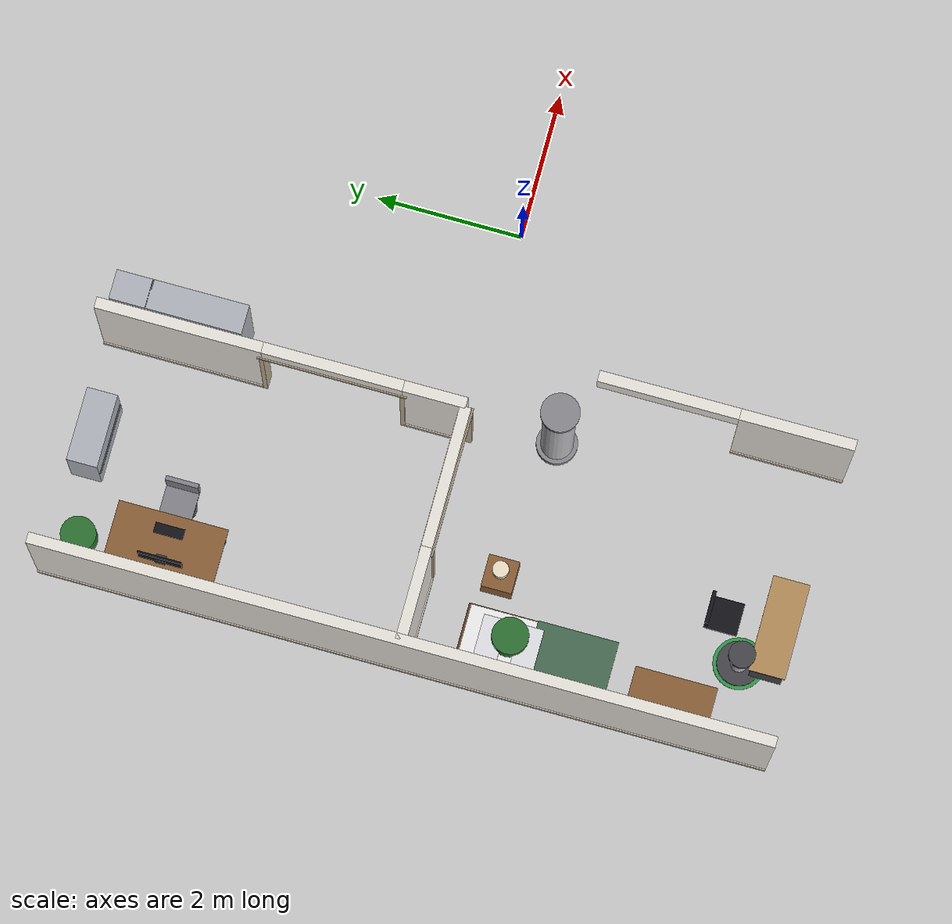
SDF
<sdf version="1.4">
 <world name="complex_indoor">
  <include><uri>model://sun</uri></include>
  <include><uri>model://ground_plane</uri></include>
  <model name="wall_west_0">
   <static>true</static>
   <pose>-6.000 0.000 1.250 0 0 0.0000</pose>
   <link name="link">
    <collision name="collision"><geometry><box><size>0.150 10.000 2.500</size></box></geometry></collision>
    <visual name="visual">
     <geometry><box><size>0.150 10.000 2.500</size></box></geometry>
     <material>
      <ambient>0.93 0.91 0.88 1</ambient>
      <diffuse>0.93 0.91 0.88 1</diffuse>
      <specular>0.1 0.1 0.1 1</specular>
     </material>
    </visual>
   </link>
  </model>
  <model name="wall_west_base_0">
   <static>true</static>
   <pose>-6.000 0.000 0.050 0 0 0.0000</pose>
   <link name="link">
    <collision name="collision"><geometry><box><size>0.190 10.000 0.100</size></box></geometry></collision>
    <visual name="visual">
     <geometry><box><size>0.190 10.000 0.100</size></box></geometry>
     <material>
      <ambient>0.82 0.78 0.72 1</ambient>
      <diffuse>0.82 0.78 0.72 1</diffuse>
      <specular>0.1 0.1 0.1 1</specular>
     </material>
    </visual>
   </link>
  </model>
  <model name="wall_split_0">
   <static>true</static>
   <pose>-5.375 0.000 1.250 0 0 0.0000</pose>
   <link name="link">
    <collision name="collision"><geometry><box><size>1.250 0.150 2.500</size></box></geometry></collision>
    <visual name="visual">
     <geometry><box><size>1.250 0.150 2.500</size></box></geometry>
     <material>
      <ambient>0.93 0.91 0.88 1</ambient>
      <diffuse>0.93 0.91 0.88 1</diffuse>
      <specular>0.1 0.1 0.1 1</specular>
     </material>
    </visual>
   </link>
  </model>
  <model name="wall_split_base_0">
   <static>true</static>
   <pose>-5.375 0.000 0.050 0 0 0.0000</pose>
   <link name="link">
    <collision name="collision"><geometry><box><size>1.250 0.190 0.100</size></box></geometry></collision>
    <visual name="visual">
     <geometry><box><size>1.250 0.190 0.100</size></box></geometry>
     <material>
      <ambient>0.82 0.78 0.72 1</ambient>
      <diffuse>0.82 0.78 0.72 1</diffuse>
      <specular>0.1 0.1 0.1 1</specular>
     </material>
    </visual>
   </link>
  </model>
  <model name="wall_split_lintel_1">
   <static>true</static>
   <pose>-3.800 0.000 2.300 0 0 0.0000</pose>
   <link name="link">
    <collision name="collision"><geometry><box><size>1.900 0.150 0.400</size></box></geometry></collision>
    <visual name="visual">
     <geometry><box><size>1.900 0.150 0.400</size></box></geometry>
     <material>
      <ambient>0.93 0.91 0.88 1</ambient>
      <diffuse>0.93 0.91 0.88 1</diffuse>
      <specular>0.1 0.1 0.1 1</specular>
     </material>
    </visual>
   </link>
  </model>
  <model name="wall_split_frame_1_l">
   <static>true</static>
   <pose>-4.750 0.000 1.050 0 0 0.0000</pose>
   <link name="link">
    <collision name="collision"><geometry><box><size>0.060 0.190 2.100</size></box></geometry></collision>
    <visual name="visual">
     <geometry><box><size>0.060 0.190 2.100</size></box></geometry>
     <material>
      <ambient>0.75 0.68 0.58 1</ambient>
      <diffuse>0.75 0.68 0.58 1</diffuse>
      <specular>0.1 0.1 0.1 1</specular>
     </material>
    </visual>
   </link>
  </model>
  <model name="wall_split_frame_1_r">
   <static>true</static>
   <pose>-2.850 0.000 1.050 0 0 0.0000</pose>
   <link name="link">
    <collision name="collision"><geometry><box><size>0.060 0.190 2.100</size></box></geometry></collision>
    <visual name="visual">
     <geometry><box><size>0.060 0.190 2.100</size></box></geometry>
     <material>
      <ambient>0.75 0.68 0.58 1</ambient>
      <diffuse>0.75 0.68 0.58 1</diffuse>
      <specular>0.1 0.1 0.1 1</specular>
     </material>
    </visual>
   </link>
  </model>
  <model name="wall_split_frame_1_t">
   <static>true</static>
   <pose>-3.800 0.000 2.130 0 0 0.0000</pose>
   <link name="link">
    <collision name="collision"><geometry><box><size>2.020 0.190 0.060</size></box></geometry></collision>
    <visual name="visual">
     <geometry><box><size>2.020 0.190 0.060</size></box></geometry>
     <material>
      <ambient>0.75 0.68 0.58 1</ambient>
      <diffuse>0.75 0.68 0.58 1</diffuse>
      <specular>0.1 0.1 0.1 1</specular>
     </material>
    </visual>
   </link>
  </model>
  <model name="wall_north_div1_0">
   <static>true</static>
   <pose>-2.800 0.425 1.250 0 0 0.0000</pose>
   <link name="link">
    <collision name="collision"><geometry><box><size>0.150 0.850 2.500</size></box></geometry></collision>
    <visual name="visual">
     <geometry><box><size>0.150 0.850 2.500</size></box></geometry>
     <material>
      <ambient>0.93 0.91 0.88 1</ambient>
      <diffuse>0.93 0.91 0.88 1</diffuse>
      <specular>0.1 0.1 0.1 1</specular>
     </material>
    </visual>
   </link>
  </model>
  <model name="wall_north_div1_base_0">
   <static>true</static>
   <pose>-2.800 0.425 0.050 0 0 0.0000</pose>
   <link name="link">
    <collision name="collision"><geometry><box><size>0.190 0.850 0.100</size></box></geometry></collision>
    <visual name="visual">
     <geometry><box><size>0.190 0.850 0.100</size></box></geometry>
     <material>
      <ambient>0.82 0.78 0.72 1</ambient>
      <diffuse>0.82 0.78 0.72 1</diffuse>
      <specular>0.1 0.1 0.1 1</specular>
     </material>
    </visual>
   </link>
  </model>
  <model name="wall_north_div1_lintel_1">
   <static>true</static>
   <pose>-2.800 1.800 2.300 0 0 0.0000</pose>
   <link name="link">
    <collision name="collision"><geometry><box><size>0.150 1.900 0.400</size></box></geometry></collision>
    <visual name="visual">
     <geometry><box><size>0.150 1.900 0.400</size></box></geometry>
     <material>
      <ambient>0.93 0.91 0.88 1</ambient>
      <diffuse>0.93 0.91 0.88 1</diffuse>
      <specular>0.1 0.1 0.1 1</specular>
     </material>
    </visual>
   </link>
  </model>
  <model name="wall_north_div1_frame_1_b">
   <static>true</static>
   <pose>-2.800 0.850 1.050 0 0 0.0000</pose>
   <link name="link">
    <collision name="collision"><geometry><box><size>0.190 0.060 2.100</size></box></geometry></collision>
    <visual name="visual">
     <geometry><box><size>0.190 0.060 2.100</size></box></geometry>
     <material>
      <ambient>0.75 0.68 0.58 1</ambient>
      <diffuse>0.75 0.68 0.58 1</diffuse>
      <specular>0.1 0.1 0.1 1</specular>
     </material>
    </visual>
   </link>
  </model>
  <model name="wall_north_div1_frame_1_t">
   <static>true</static>
   <pose>-2.800 2.750 1.050 0 0 0.0000</pose>
   <link name="link">
    <collision name="collision"><geometry><box><size>0.190 0.060 2.100</size></box></geometry></collision>
    <visual name="visual">
     <geometry><box><size>0.190 0.060 2.100</size></box></geometry>
     <material>
      <ambient>0.75 0.68 0.58 1</ambient>
      <diffuse>0.75 0.68 0.58 1</diffuse>
      <specular>0.1 0.1 0.1 1</specular>
     </material>
    </visual>
   </link>
  </model>
  <model name="wall_north_div1_frame_1_top">
   <static>true</static>
   <pose>-2.800 1.800 2.130 0 0 0.0000</pose>
   <link name="link">
    <collision name="collision"><geometry><box><size>0.190 2.020 0.060</size></box></geometry></collision>
    <visual name="visual">
     <geometry><box><size>0.190 2.020 0.060</size></box></geometry>
     <material>
      <ambient>0.75 0.68 0.58 1</ambient>
      <diffuse>0.75 0.68 0.58 1</diffuse>
      <specular>0.1 0.1 0.1 1</specular>
     </material>
    </visual>
   </link>
  </model>
  <model name="wall_north_div1_2">
   <static>true</static>
   <pose>-2.800 3.875 1.250 0 0 0.0000</pose>
   <link name="link">
    <collision name="collision"><geometry><box><size>0.150 2.250 2.500</size></box></geometry></collision>
    <visual name="visual">
     <geometry><box><size>0.150 2.250 2.500</size></box></geometry>
     <material>
      <ambient>0.93 0.91 0.88 1</ambient>
      <diffuse>0.93 0.91 0.88 1</diffuse>
      <specular>0.1 0.1 0.1 1</specular>
     </material>
    </visual>
   </link>
  </model>
  <model name="wall_north_div1_base_2">
   <static>true</static>
   <pose>-2.800 3.875 0.050 0 0 0.0000</pose>
   <link name="link">
    <collision name="collision"><geometry><box><size>0.190 2.250 0.100</size></box></geometry></collision>
    <visual name="visual">
     <geometry><box><size>0.190 2.250 0.100</size></box></geometry>
     <material>
      <ambient>0.82 0.78 0.72 1</ambient>
      <diffuse>0.82 0.78 0.72 1</diffuse>
      <specular>0.1 0.1 0.1 1</specular>
     </material>
    </visual>
   </link>
  </model>
  <model name="wall_south_div_0">
   <static>true</static>
   <pose>-2.000 -4.225 1.250 0 0 0.0000</pose>
   <link name="link">
    <collision name="collision"><geometry><box><size>0.150 1.550 2.500</size></box></geometry></collision>
    <visual name="visual">
     <geometry><box><size>0.150 1.550 2.500</size></box></geometry>
     <material>
      <ambient>0.93 0.91 0.88 1</ambient>
      <diffuse>0.93 0.91 0.88 1</diffuse>
      <specular>0.1 0.1 0.1 1</specular>
     </material>
    </visual>
   </link>
  </model>
  <model name="wall_south_div_base_0">
   <static>true</static>
   <pose>-2.000 -4.225 0.050 0 0 0.0000</pose>
   <link name="link">
    <collision name="collision"><geometry><box><size>0.190 1.550 0.100</size></box></geometry></collision>
    <visual name="visual">
     <geometry><box><size>0.190 1.550 0.100</size></box></geometry>
     <material>
      <ambient>0.82 0.78 0.72 1</ambient>
      <diffuse>0.82 0.78 0.72 1</diffuse>
      <specular>0.1 0.1 0.1 1</specular>
     </material>
    </visual>
   </link>
  </model>
  <model name="wall_south_div_lintel_1">
   <static>true</static>
   <pose>-2.000 -2.500 2.300 0 0 0.0000</pose>
   <link name="link">
    <collision name="collision"><geometry><box><size>0.150 1.900 0.400</size></box></geometry></collision>
    <visual name="visual">
     <geometry><box><size>0.150 1.900 0.400</size></box></geometry>
     <material>
      <ambient>0.93 0.91 0.88 1</ambient>
      <diffuse>0.93 0.91 0.88 1</diffuse>
      <specular>0.1 0.1 0.1 1</specular>
     </material>
    </visual>
   </link>
  </model>
  <model name="desk_a_top">
   <static>true</static>
   <pose>-5.350 3.400 0.740 0 0 0.0000</pose>
   <link name="link">
    <collision name="collision"><geometry><box><size>0.750 1.500 0.040</size></box></geometry></collision>
    <visual name="visual">
     <geometry><box><size>0.750 1.500 0.040</size></box></geometry>
     <material>
      <ambient>0.55 0.38 0.22 1</ambient>
      <diffuse>0.55 0.38 0.22 1</diffuse>
      <specular>0.1 0.1 0.1 1</specular>
     </material>
    </visual>
   </link>
  </model>
  <model name="desk_a_leg_1">
   <static>true</static>
   <pose>-5.650 2.720 0.360 0 0 0.0000</pose>
   <link name="link">
    <collision name="collision"><geometry><box><size>0.050 0.050 0.720</size></box></geometry></collision>
    <visual name="visual">
     <geometry><box><size>0.050 0.050 0.720</size></box></geometry>
     <material>
      <ambient>0.28 0.28 0.30 1</ambient>
      <diffuse>0.28 0.28 0.30 1</diffuse>
      <specular>0.1 0.1 0.1 1</specular>
     </material>
    </visual>
   </link>
  </model>
  <model name="desk_a_leg_2">
   <static>true</static>
   <pose>-5.050 2.720 0.360 0 0 0.0000</pose>
   <link name="link">
    <collision name="collision"><geometry><box><size>0.050 0.050 0.720</size></box></geometry></collision>
    <visual name="visual">
     <geometry><box><size>0.050 0.050 0.720</size></box></geometry>
     <material>
      <ambient>0.28 0.28 0.30 1</ambient>
      <diffuse>0.28 0.28 0.30 1</diffuse>
      <specular>0.1 0.1 0.1 1</specular>
     </material>
    </visual>
   </link>
  </model>
  <model name="desk_a_leg_3">
   <static>true</static>
   <pose>-5.650 4.080 0.360 0 0 0.0000</pose>
   <link name="link">
    <collision name="collision"><geometry><box><size>0.050 0.050 0.720</size></box></geometry></collision>
    <visual name="visual">
     <geometry><box><size>0.050 0.050 0.720</size></box></geometry>
     <material>
      <ambient>0.28 0.28 0.30 1</ambient>
      <diffuse>0.28 0.28 0.30 1</diffuse>
      <specular>0.1 0.1 0.1 1</specular>
     </material>
    </visual>
   </link>
  </model>
  <model name="desk_a_leg_4">
   <static>true</static>
   <pose>-5.050 4.080 0.360 0 0 0.0000</pose>
   <link name="link">
    <collision name="collision"><geometry><box><size>0.050 0.050 0.720</size></box></geometry></collision>
    <visual name="visual">
     <geometry><box><size>0.050 0.050 0.720</size></box></geometry>
     <material>
      <ambient>0.28 0.28 0.30 1</ambient>
      <diffuse>0.28 0.28 0.30 1</diffuse>
      <specular>0.1 0.1 0.1 1</specular>
     </material>
    </visual>
   </link>
  </model>
  <model name="monitor_a_screen">
   <static>true</static>
   <pose>-5.620 3.400 0.950 0 0 0.0000</pose>
   <link name="link">
    <collision name="collision"><geometry><box><size>0.030 0.600 0.360</size></box></geometry></collision>
    <visual name="visual">
     <geometry><box><size>0.030 0.600 0.360</size></box></geometry>
     <material>
      <ambient>0.08 0.08 0.10 1</ambient>
      <diffuse>0.08 0.08 0.10 1</diffuse>
      <specular>0.1 0.1 0.1 1</specular>
     </material>
    </visual>
   </link>
  </model>
  <model name="monitor_a_stand">
   <static>true</static>
   <pose>-5.600 3.400 0.820 0 0 0.0000</pose>
   <link name="link">
    <collision name="collision"><geometry><box><size>0.100 0.140 0.160</size></box></geometry></collision>
    <visual name="visual">
     <geometry><box><size>0.100 0.140 0.160</size></box></geometry>
     <material>
      <ambient>0.28 0.28 0.30 1</ambient>
      <diffuse>0.28 0.28 0.30 1</diffuse>
      <specular>0.1 0.1 0.1 1</specular>
     </material>
    </visual>
   </link>
  </model>
  <model name="keyboard_a">
   <static>true</static>
   <pose>-5.200 3.400 0.770 0 0 0.0000</pose>
   <link name="link">
    <collision name="collision"><geometry><box><size>0.140 0.400 0.020</size></box></geometry></collision>
    <visual name="visual">
     <geometry><box><size>0.140 0.400 0.020</size></box></geometry>
     <material>
      <ambient>0.08 0.08 0.10 1</ambient>
      <diffuse>0.08 0.08 0.10 1</diffuse>
      <specular>0.1 0.1 0.1 1</specular>
     </material>
    </visual>
   </link>
  </model>
  <model name="chair_a_seat">
   <static>true</static>
   <pose>-4.750 3.400 0.460 0 0 0.0000</pose>
   <link name="link">
    <collision name="collision"><geometry><box><size>0.450 0.450 0.060</size></box></geometry></collision>
    <visual name="visual">
     <geometry><box><size>0.450 0.450 0.060</size></box></geometry>
     <material>
      <ambient>0.52 0.52 0.55 1</ambient>
      <diffuse>0.52 0.52 0.55 1</diffuse>
      <specular>0.1 0.1 0.1 1</specular>
     </material>
    </visual>
   </link>
  </model>
  <model name="chair_a_back">
   <static>true</static>
   <pose>-4.550 3.400 0.720 0 0 0.0000</pose>
   <link name="link">
    <collision name="collision"><geometry><box><size>0.060 0.450 0.480</size></box></geometry></collision>
    <visual name="visual">
     <geometry><box><size>0.060 0.450 0.480</size></box></geometry>
     <material>
      <ambient>0.52 0.52 0.55 1</ambient>
      <diffuse>0.52 0.52 0.55 1</diffuse>
      <specular>0.1 0.1 0.1 1</specular>
     </material>
    </visual>
   </link>
  </model>
  <model name="chair_a_pole">
   <static>true</static>
   <pose>-4.750 3.400 0.230 0 0 0</pose>
   <link name="link">
    <collision name="collision">
     <geometry><cylinder><radius>0.030</radius><length>0.440</length></cylinder></geometry>
    </collision>
    <visual name="visual">
     <geometry><cylinder><radius>0.030</radius><length>0.440</length></cylinder></geometry>
     <material>
      <ambient>0.28 0.28 0.30 1</ambient>
      <diffuse>0.28 0.28 0.30 1</diffuse>
      <specular>0.15 0.15 0.15 1</specular>
     </material>
    </visual>
   </link>
  </model>
  <model name="chair_a_base">
   <static>true</static>
   <pose>-4.750 3.400 0.020 0 0 0</pose>
   <link name="link">
    <collision name="collision">
     <geometry><cylinder><radius>0.220</radius><length>0.040</length></cylinder></geometry>
    </collision>
    <visual name="visual">
     <geometry><cylinder><radius>0.220</radius><length>0.040</length></cylinder></geometry>
     <material>
      <ambient>0.28 0.28 0.30 1</ambient>
      <diffuse>0.28 0.28 0.30 1</diffuse>
      <specular>0.15 0.15 0.15 1</specular>
     </material>
    </visual>
   </link>
  </model>
  <model name="filecab_a">
   <static>true</static>
   <pose>-4.200 4.720 0.600 0 0 0.0000</pose>
   <link name="link">
    <collision name="collision"><geometry><box><size>1.000 0.420 1.200</size></box></geometry></collision>
    <visual name="visual">
     <geometry><box><size>1.000 0.420 1.200</size></box></geometry>
     <material>
      <ambient>0.70 0.72 0.75 1</ambient>
      <diffuse>0.70 0.72 0.75 1</diffuse>
      <specular>0.1 0.1 0.1 1</specular>
     </material>
    </visual>
   </link>
  </model>
  <model name="filecab_a_line">
   <static>true</static>
   <pose>-4.200 4.500 0.600 0 0 0.0000</pose>
   <link name="link">
    <collision name="collision"><geometry><box><size>0.960 0.020 0.020</size></box></geometry></collision>
    <visual name="visual">
     <geometry><box><size>0.960 0.020 0.020</size></box></geometry>
     <material>
      <ambient>0.28 0.28 0.30 1</ambient>
      <diffuse>0.28 0.28 0.30 1</diffuse>
      <specular>0.1 0.1 0.1 1</specular>
     </material>
    </visual>
   </link>
  </model>
  <model name="pot_a">
   <static>true</static>
   <pose>-5.550 4.550 0.160 0 0 0</pose>
   <link name="link">
    <collision name="collision">
     <geometry><cylinder><radius>0.160</radius><length>0.320</length></cylinder></geometry>
    </collision>
    <visual name="visual">
     <geometry><cylinder><radius>0.160</radius><length>0.320</length></cylinder></geometry>
     <material>
      <ambient>0.65 0.35 0.20 1</ambient>
      <diffuse>0.65 0.35 0.20 1</diffuse>
      <specular>0.15 0.15 0.15 1</specular>
     </material>
    </visual>
   </link>
  </model>
  <model name="plant_a">
   <static>true</static>
   <pose>-5.550 4.550 0.530 0 0 0</pose>
   <link name="link">
    <collision name="collision">
     <geometry><cylinder><radius>0.240</radius><length>0.420</length></cylinder></geometry>
    </collision>
    <visual name="visual">
     <geometry><cylinder><radius>0.240</radius><length>0.420</length></cylinder></geometry>
     <material>
      <ambient>0.18 0.45 0.20 1</ambient>
      <diffuse>0.18 0.45 0.20 1</diffuse>
      <specular>0.15 0.15 0.15 1</specular>
     </material>
    </visual>
   </link>
  </model>
  <model name="rack_c_left">
   <static>true</static>
   <pose>-2.420 4.000 1.000 0 0 0.0000</pose>
   <link name="link">
    <collision name="collision"><geometry><box><size>0.400 1.800 2.000</size></box></geometry></collision>
    <visual name="visual">
     <geometry><box><size>0.400 1.800 2.000</size></box></geometry>
     <material>
      <ambient>0.70 0.72 0.75 1</ambient>
      <diffuse>0.70 0.72 0.75 1</diffuse>
      <specular>0.1 0.1 0.1 1</specular>
     </material>
    </visual>
   </link>
  </model>
  <model name="rack_c_left_s1">
   <static>true</static>
   <pose>-2.420 3.600 0.550 0 0 0.0000</pose>
   <link name="link">
    <collision name="collision"><geometry><box><size>0.380 0.020 1.900</size></box></geometry></collision>
    <visual name="visual">
     <geometry><box><size>0.380 0.020 1.900</size></box></geometry>
     <material>
      <ambient>0.28 0.28 0.30 1</ambient>
      <diffuse>0.28 0.28 0.30 1</diffuse>
      <specular>0.1 0.1 0.1 1</specular>
     </material>
    </visual>
   </link>
  </model>
  <model name="rack_c_left_s2">
   <static>true</static>
   <pose>-2.420 4.400 1.050 0 0 0.0000</pose>
   <link name="link">
    <collision name="collision"><geometry><box><size>0.380 0.020 1.900</size></box></geometry></collision>
    <visual name="visual">
     <geometry><box><size>0.380 0.020 1.900</size></box></geometry>
     <material>
      <ambient>0.28 0.28 0.30 1</ambient>
      <diffuse>0.28 0.28 0.30 1</diffuse>
      <specular>0.1 0.1 0.1 1</specular>
     </material>
    </visual>
   </link>
  </model>
  <model name="box_c_l1">
   <static>true</static>
   <pose>-2.420 3.800 0.680 0 0 0.0000</pose>
   <link name="link">
    <collision name="collision"><geometry><box><size>0.320 0.360 0.240</size></box></geometry></collision>
    <visual name="visual">
     <geometry><box><size>0.320 0.360 0.240</size></box></geometry>
     <material>
      <ambient>0.75 0.65 0.40 1</ambient>
      <diffuse>0.75 0.65 0.40 1</diffuse>
      <specular>0.1 0.1 0.1 1</specular>
     </material>
    </visual>
   </link>
  </model>
  <model name="box_c_l2">
   <static>true</static>
   <pose>-2.420 4.200 1.180 0 0 0.0000</pose>
   <link name="link">
    <collision name="collision"><geometry><box><size>0.320 0.360 0.240</size></box></geometry></collision>
    <visual name="visual">
     <geometry><box><size>0.320 0.360 0.240</size></box></geometry>
     <material>
      <ambient>0.60 0.60 0.65 1</ambient>
      <diffuse>0.60 0.60 0.65 1</diffuse>
      <specular>0.1 0.1 0.1 1</specular>
     </material>
    </visual>
   </link>
  </model>
  <model name="bed_d_frame">
   <static>true</static>
   <pose>-5.450 -1.600 0.150 0 0 0.0000</pose>
   <link name="link">
    <collision name="collision"><geometry><box><size>0.900 1.900 0.300</size></box></geometry></collision>
    <visual name="visual">
     <geometry><box><size>0.900 1.900 0.300</size></box></geometry>
     <material>
      <ambient>0.38 0.24 0.14 1</ambient>
      <diffuse>0.38 0.24 0.14 1</diffuse>
      <specular>0.1 0.1 0.1 1</specular>
     </material>
    </visual>
   </link>
  </model>
  <model name="bed_d_mattress">
   <static>true</static>
   <pose>-5.450 -1.600 0.410 0 0 0.0000</pose>
   <link name="link">
    <collision name="collision"><geometry><box><size>0.820 1.820 0.220</size></box></geometry></collision>
    <visual name="visual">
     <geometry><box><size>0.820 1.820 0.220</size></box></geometry>
     <material>
      <ambient>0.95 0.95 0.95 1</ambient>
      <diffuse>0.95 0.95 0.95 1</diffuse>
      <specular>0.1 0.1 0.1 1</specular>
     </material>
    </visual>
   </link>
  </model>
  <model name="pillow_d1">
   <static>true</static>
   <pose>-5.450 -1.050 0.580 0 0 0.0000</pose>
   <link name="link">
    <collision name="collision"><geometry><box><size>0.620 0.320 0.120</size></box></geometry></collision>
    <visual name="visual">
     <geometry><box><size>0.620 0.320 0.120</size></box></geometry>
     <material>
      <ambient>0.90 0.90 0.92 1</ambient>
      <diffuse>0.90 0.90 0.92 1</diffuse>
      <specular>0.1 0.1 0.1 1</specular>
     </material>
    </visual>
   </link>
  </model>
  <model name="pillow_d2">
   <static>true</static>
   <pose>-5.450 -1.550 0.580 0 0 0.0000</pose>
   <link name="link">
    <collision name="collision"><geometry><box><size>0.620 0.320 0.120</size></box></geometry></collision>
    <visual name="visual">
     <geometry><box><size>0.620 0.320 0.120</size></box></geometry>
     <material>
      <ambient>0.90 0.90 0.92 1</ambient>
      <diffuse>0.90 0.90 0.92 1</diffuse>
      <specular>0.1 0.1 0.1 1</specular>
     </material>
    </visual>
   </link>
  </model>
  <model name="blanket_d">
   <static>true</static>
   <pose>-5.450 -2.150 0.560 0 0 0.0000</pose>
   <link name="link">
    <collision name="collision"><geometry><box><size>0.840 1.100 0.080</size></box></geometry></collision>
    <visual name="visual">
     <geometry><box><size>0.840 1.100 0.080</size></box></geometry>
     <material>
      <ambient>0.28 0.42 0.32 1</ambient>
      <diffuse>0.28 0.42 0.32 1</diffuse>
      <specular>0.1 0.1 0.1 1</specular>
     </material>
    </visual>
   </link>
  </model>
  <model name="nightstand_d">
   <static>true</static>
   <pose>-4.550 -0.950 0.250 0 0 0.0000</pose>
   <link name="link">
    <collision name="collision"><geometry><box><size>0.440 0.420 0.500</size></box></geometry></collision>
    <visual name="visual">
     <geometry><box><size>0.440 0.420 0.500</size></box></geometry>
     <material>
      <ambient>0.55 0.38 0.22 1</ambient>
      <diffuse>0.55 0.38 0.22 1</diffuse>
      <specular>0.1 0.1 0.1 1</specular>
     </material>
    </visual>
   </link>
  </model>
  <model name="lamp_d_base">
   <static>true</static>
   <pose>-4.550 -0.950 0.515 0 0 0</pose>
   <link name="link">
    <collision name="collision">
     <geometry><cylinder><radius>0.070</radius><length>0.030</length></cylinder></geometry>
    </collision>
    <visual name="visual">
     <geometry><cylinder><radius>0.070</radius><length>0.030</length></cylinder></geometry>
     <material>
      <ambient>0.28 0.28 0.30 1</ambient>
      <diffuse>0.28 0.28 0.30 1</diffuse>
      <specular>0.15 0.15 0.15 1</specular>
     </material>
    </visual>
   </link>
  </model>
  <model name="lamp_d_pole">
   <static>true</static>
   <pose>-4.550 -0.950 0.650 0 0 0</pose>
   <link name="link">
    <collision name="collision">
     <geometry><cylinder><radius>0.020</radius><length>0.240</length></cylinder></geometry>
    </collision>
    <visual name="visual">
     <geometry><cylinder><radius>0.020</radius><length>0.240</length></cylinder></geometry>
     <material>
      <ambient>0.28 0.28 0.30 1</ambient>
      <diffuse>0.28 0.28 0.30 1</diffuse>
      <specular>0.15 0.15 0.15 1</specular>
     </material>
    </visual>
   </link>
  </model>
  <model name="lamp_d_shade">
   <static>true</static>
   <pose>-4.550 -0.950 0.850 0 0 0</pose>
   <link name="link">
    <collision name="collision">
     <geometry><cylinder><radius>0.110</radius><length>0.160</length></cylinder></geometry>
    </collision>
    <visual name="visual">
     <geometry><cylinder><radius>0.110</radius><length>0.160</length></cylinder></geometry>
     <material>
      <ambient>0.95 0.90 0.80 1</ambient>
      <diffuse>0.95 0.90 0.80 1</diffuse>
      <specular>0.15 0.15 0.15 1</specular>
     </material>
    </visual>
   </link>
  </model>
  <model name="wardrobe_d">
   <static>true</static>
   <pose>-5.680 -3.550 1.000 0 0 0.0000</pose>
   <link name="link">
    <collision name="collision"><geometry><box><size>0.440 1.100 2.000</size></box></geometry></collision>
    <visual name="visual">
     <geometry><box><size>0.440 1.100 2.000</size></box></geometry>
     <material>
      <ambient>0.55 0.38 0.22 1</ambient>
      <diffuse>0.55 0.38 0.22 1</diffuse>
      <specular>0.1 0.1 0.1 1</specular>
     </material>
    </visual>
   </link>
  </model>
  <model name="wardrobe_d_line">
   <static>true</static>
   <pose>-5.680 -3.550 1.000 0 0 0.0000</pose>
   <link name="link">
    <collision name="collision"><geometry><box><size>0.020 1.060 0.020</size></box></geometry></collision>
    <visual name="visual">
     <geometry><box><size>0.020 1.060 0.020</size></box></geometry>
     <material>
      <ambient>0.38 0.24 0.14 1</ambient>
      <diffuse>0.38 0.24 0.14 1</diffuse>
      <specular>0.1 0.1 0.1 1</specular>
     </material>
    </visual>
   </link>
  </model>
  <model name="desk_d_top">
   <static>true</static>
   <pose>-4.300 -4.680 0.740 0 0 0.0000</pose>
   <link name="link">
    <collision name="collision"><geometry><box><size>1.300 0.500 0.040</size></box></geometry></collision>
    <visual name="visual">
     <geometry><box><size>1.300 0.500 0.040</size></box></geometry>
     <material>
      <ambient>0.72 0.56 0.36 1</ambient>
      <diffuse>0.72 0.56 0.36 1</diffuse>
      <specular>0.1 0.1 0.1 1</specular>
     </material>
    </visual>
   </link>
  </model>
  <model name="desk_d_leg_1">
   <static>true</static>
   <pose>-4.900 -4.680 0.360 0 0 0.0000</pose>
   <link name="link">
    <collision name="collision"><geometry><box><size>0.050 0.440 0.720</size></box></geometry></collision>
    <visual name="visual">
     <geometry><box><size>0.050 0.440 0.720</size></box></geometry>
     <material>
      <ambient>0.28 0.28 0.30 1</ambient>
      <diffuse>0.28 0.28 0.30 1</diffuse>
      <specular>0.1 0.1 0.1 1</specular>
     </material>
    </visual>
   </link>
  </model>
  <model name="desk_d_leg_2">
   <static>true</static>
   <pose>-3.700 -4.680 0.360 0 0 0.0000</pose>
   <link name="link">
    <collision name="collision"><geometry><box><size>0.050 0.440 0.720</size></box></geometry></collision>
    <visual name="visual">
     <geometry><box><size>0.050 0.440 0.720</size></box></geometry>
     <material>
      <ambient>0.28 0.28 0.30 1</ambient>
      <diffuse>0.28 0.28 0.30 1</diffuse>
      <specular>0.1 0.1 0.1 1</specular>
     </material>
    </visual>
   </link>
  </model>
  <model name="chair_d_seat">
   <static>true</static>
   <pose>-4.300 -3.950 0.460 0 0 0.0000</pose>
   <link name="link">
    <collision name="collision"><geometry><box><size>0.440 0.440 0.050</size></box></geometry></collision>
    <visual name="visual">
     <geometry><box><size>0.440 0.440 0.050</size></box></geometry>
     <material>
      <ambient>0.08 0.08 0.10 1</ambient>
      <diffuse>0.08 0.08 0.10 1</diffuse>
      <specular>0.1 0.1 0.1 1</specular>
     </material>
    </visual>
   </link>
  </model>
  <model name="chair_d_back">
   <static>true</static>
   <pose>-4.300 -3.740 0.710 0 0 0.0000</pose>
   <link name="link">
    <collision name="collision"><geometry><box><size>0.440 0.050 0.440</size></box></geometry></collision>
    <visual name="visual">
     <geometry><box><size>0.440 0.050 0.440</size></box></geometry>
     <material>
      <ambient>0.08 0.08 0.10 1</ambient>
      <diffuse>0.08 0.08 0.10 1</diffuse>
      <specular>0.1 0.1 0.1 1</specular>
     </material>
    </visual>
   </link>
  </model>
  <model name="pillar_1_base">
   <static>true</static>
   <pose>-2.600 -1.200 0.060 0 0 0</pose>
   <link name="link">
    <collision name="collision">
     <geometry><cylinder><radius>0.280</radius><length>0.120</length></cylinder></geometry>
    </collision>
    <visual name="visual">
     <geometry><cylinder><radius>0.280</radius><length>0.120</length></cylinder></geometry>
     <material>
      <ambient>0.55 0.55 0.57 1</ambient>
      <diffuse>0.55 0.55 0.57 1</diffuse>
      <specular>0.15 0.15 0.15 1</specular>
     </material>
    </visual>
   </link>
  </model>
  <model name="pillar_1_shaft">
   <static>true</static>
   <pose>-2.600 -1.200 1.270 0 0 0</pose>
   <link name="link">
    <collision name="collision">
     <geometry><cylinder><radius>0.220</radius><length>2.300</length></cylinder></geometry>
    </collision>
    <visual name="visual">
     <geometry><cylinder><radius>0.220</radius><length>2.300</length></cylinder></geometry>
     <material>
      <ambient>0.72 0.72 0.74 1</ambient>
      <diffuse>0.72 0.72 0.74 1</diffuse>
      <specular>0.15 0.15 0.15 1</specular>
     </material>
    </visual>
   </link>
  </model>
  <model name="pillar_1_cap">
   <static>true</static>
   <pose>-2.600 -1.200 2.460 0 0 0</pose>
   <link name="link">
    <collision name="collision">
     <geometry><cylinder><radius>0.260</radius><length>0.080</length></cylinder></geometry>
    </collision>
    <visual name="visual">
     <geometry><cylinder><radius>0.260</radius><length>0.080</length></cylinder></geometry>
     <material>
      <ambient>0.55 0.55 0.57 1</ambient>
      <diffuse>0.55 0.55 0.57 1</diffuse>
      <specular>0.15 0.15 0.15 1</specular>
     </material>
    </visual>
   </link>
  </model>
  <model name="pot_hall_1">
   <static>true</static>
   <pose>-5.350 -1.300 0.175 0 0 0</pose>
   <link name="link">
    <collision name="collision">
     <geometry><cylinder><radius>0.180</radius><length>0.350</length></cylinder></geometry>
    </collision>
    <visual name="visual">
     <geometry><cylinder><radius>0.180</radius><length>0.350</length></cylinder></geometry>
     <material>
      <ambient>0.65 0.35 0.20 1</ambient>
      <diffuse>0.65 0.35 0.20 1</diffuse>
      <specular>0.15 0.15 0.15 1</specular>
     </material>
    </visual>
   </link>
  </model>
  <model name="plant_hall_1">
   <static>true</static>
   <pose>-5.350 -1.300 0.575 0 0 0</pose>
   <link name="link">
    <collision name="collision">
     <geometry><cylinder><radius>0.250</radius><length>0.450</length></cylinder></geometry>
    </collision>
    <visual name="visual">
     <geometry><cylinder><radius>0.250</radius><length>0.450</length></cylinder></geometry>
     <material>
      <ambient>0.18 0.45 0.20 1</ambient>
      <diffuse>0.18 0.45 0.20 1</diffuse>
      <specular>0.15 0.15 0.15 1</specular>
     </material>
    </visual>
   </link>
  </model>
  <model name="charger_base">
   <static>true</static>
   <pose>-4.800 -4.300 0.030 0 0 0</pose>
   <link name="link">
    <collision name="collision">
     <geometry><cylinder><radius>0.300</radius><length>0.060</length></cylinder></geometry>
    </collision>
    <visual name="visual">
     <geometry><cylinder><radius>0.300</radius><length>0.060</length></cylinder></geometry>
     <material>
      <ambient>0.28 0.28 0.30 1</ambient>
      <diffuse>0.28 0.28 0.30 1</diffuse>
      <specular>0.15 0.15 0.15 1</specular>
     </material>
    </visual>
   </link>
  </model>
  <model name="charger_pillar">
   <static>true</static>
   <pose>-4.800 -4.300 0.460 0 0 0</pose>
   <link name="link">
    <collision name="collision">
     <geometry><cylinder><radius>0.120</radius><length>0.800</length></cylinder></geometry>
    </collision>
    <visual name="visual">
     <geometry><cylinder><radius>0.120</radius><length>0.800</length></cylinder></geometry>
     <material>
      <ambient>0.70 0.72 0.75 1</ambient>
      <diffuse>0.70 0.72 0.75 1</diffuse>
      <specular>0.15 0.15 0.15 1</specular>
     </material>
    </visual>
   </link>
  </model>
  <model name="charger_top">
   <static>true</static>
   <pose>-4.800 -4.300 0.900 0 0 0</pose>
   <link name="link">
    <collision name="collision">
     <geometry><cylinder><radius>0.180</radius><length>0.080</length></cylinder></geometry>
    </collision>
    <visual name="visual">
     <geometry><cylinder><radius>0.180</radius><length>0.080</length></cylinder></geometry>
     <material>
      <ambient>0.28 0.28 0.30 1</ambient>
      <diffuse>0.28 0.28 0.30 1</diffuse>
      <specular>0.15 0.15 0.15 1</specular>
     </material>
    </visual>
   </link>
  </model>
  <model name="charger_led">
   <static>true</static>
   <pose>-4.800 -4.180 0.700 0 0 0</pose>
   <link name="link">
    <collision name="collision">
     <geometry><cylinder><radius>0.030</radius><length>0.040</length></cylinder></geometry>
    </collision>
    <visual name="visual">
     <geometry><cylinder><radius>0.030</radius><length>0.040</length></cylinder></geometry>
     <material>
      <ambient>0.10 0.80 0.20 1</ambient>
      <diffuse>0.10 0.80 0.20 1</diffuse>
      <specular>0.15 0.15 0.15 1</specular>
     </material>
    </visual>
   </link>
  </model>
  <model name="charger_port">
   <static>true</static>
   <pose>-4.800 -4.150 0.550 0 0 0.0000</pose>
   <link name="link">
    <collision name="collision"><geometry><box><size>0.060 0.040 0.080</size></box></geometry></collision>
    <visual name="visual">
     <geometry><box><size>0.060 0.040 0.080</size></box></geometry>
     <material>
      <ambient>0.08 0.08 0.10 1</ambient>
      <diffuse>0.08 0.08 0.10 1</diffuse>
      <specular>0.1 0.1 0.1 1</specular>
     </material>
    </visual>
   </link>
  </model>
  <model name="floor_marker_home">
   <static>true</static>
   <pose>-4.800 -4.300 0.012 0 0 0</pose>
   <link name="link">
    <collision name="collision">
     <geometry><cylinder><radius>0.350</radius><length>0.010</length></cylinder></geometry>
    </collision>
    <visual name="visual">
     <geometry><cylinder><radius>0.350</radius><length>0.010</length></cylinder></geometry>
     <material>
      <ambient>0.20 0.60 0.30 1</ambient>
      <diffuse>0.20 0.60 0.30 1</diffuse>
      <specular>0.15 0.15 0.15 1</specular>
     </material>
    </visual>
   </link>
  </model>
 </world>
</sdf>
